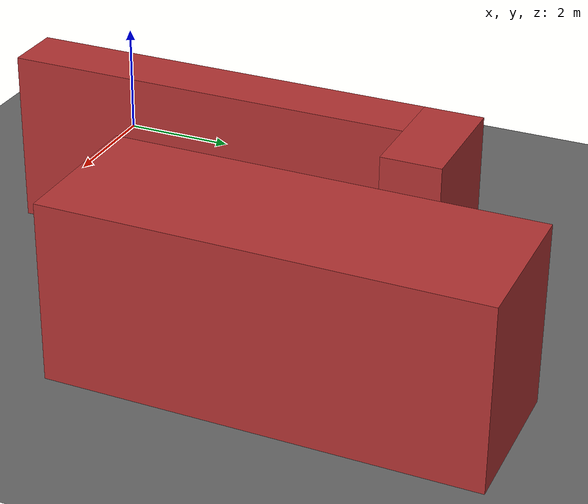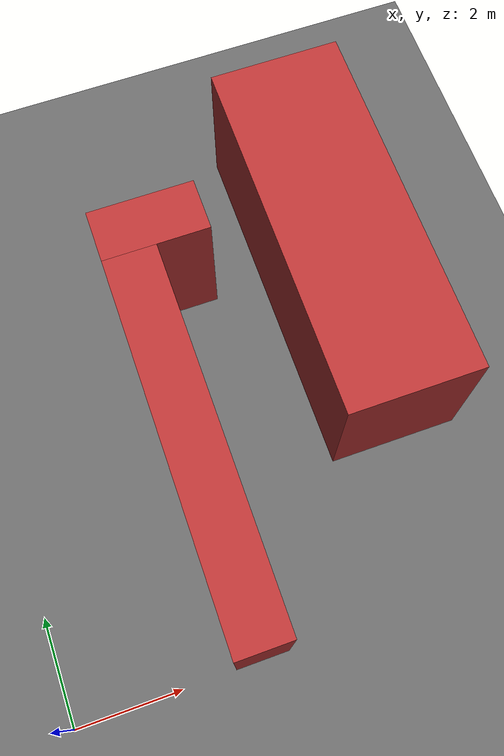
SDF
<?xml version="1.0" ?>
<sdf version="1.9">
  <world name="hybrid_planner_world">

    <physics name="default_physics" type="ode">
      <max_step_size>0.004</max_step_size>
      <real_time_factor>1.0</real_time_factor>
    </physics>

    <plugin filename="gz-sim-physics-system" name="gz::sim::systems::Physics"/>
    <plugin filename="gz-sim-scene-broadcaster-system" name="gz::sim::systems::SceneBroadcaster"/>
    <plugin filename="gz-sim-sensors-system" name="gz::sim::systems::Sensors"/>
    <plugin filename="gz-sim-user-commands-system" name="gz::sim::systems::UserCommands"/>

    <light type="directional" name="sun">
      <cast_shadows>true</cast_shadows>
      <pose>0 0 10 0 0 0</pose>
      <diffuse>0.8 0.8 0.8 1</diffuse>
      <specular>0.2 0.2 0.2 1</specular>
      <direction>-0.5 0.1 -0.9</direction>
    </light>

    <model name="ground_plane">
      <static>true</static>
      <link name="link">
        <collision name="collision">
          <geometry><plane><normal>0 0 1</normal><size>100 100</size></plane></geometry>
        </collision>
        <visual name="visual">
          <geometry><plane><normal>0 0 1</normal><size>100 100</size></plane></geometry>
          <material>
            <ambient>0.3 0.3 0.3 1</ambient>
            <diffuse>0.4 0.4 0.4 1</diffuse>
          </material>
        </visual>
      </link>
    </model>

    <!-- Obstacle 1: matches Python obstacle_list (3.0, 0.0, 1.0, 7.0) -->
    <!-- Box spans x:[3.0,4.0] y:[0.0,7.0] -> center (3.5, 3.5), size (1.0, 7.0) -->
    <model name="obstacle_1">
      <static>true</static>
      <pose>3.5 3.5 1.5 0 0 0</pose>
      <link name="link">
        <collision name="collision">
          <geometry><box><size>1.0 7.0 3.0</size></box></geometry>
        </collision>
        <visual name="visual">
          <geometry><box><size>1.0 7.0 3.0</size></box></geometry>
          <material>
            <ambient>0.6 0.1 0.1 1</ambient>
            <diffuse>0.7 0.2 0.2 1</diffuse>
          </material>
        </visual>
      </link>
    </model>

    <!-- Obstacle 2: matches (6.0, 3.0, 2.5, 7.0) -->
    <!-- Box spans x:[6.0,8.5] y:[3.0,10.0] -> center (7.25, 6.5), size (2.5, 7.0) -->
    <model name="obstacle_2">
      <static>true</static>
      <pose>7.25 6.5 1.5 0 0 0</pose>
      <link name="link">
        <collision name="collision">
          <geometry><box><size>2.5 7.0 3.0</size></box></geometry>
        </collision>
        <visual name="visual">
          <geometry><box><size>2.5 7.0 3.0</size></box></geometry>
          <material>
            <ambient>0.6 0.1 0.1 1</ambient>
            <diffuse>0.7 0.2 0.2 1</diffuse>
          </material>
        </visual>
      </link>
    </model>

    <!-- Obstacle 3: matches (3.0, 7.0, 2.0, 1.0) -->
    <!-- Box spans x:[3.0,5.0] y:[7.0,8.0] -> center (4.0, 7.5), size (2.0, 1.0) -->
    <model name="obstacle_3">
      <static>true</static>
      <pose>4.0 7.5 1.5 0 0 0</pose>
      <link name="link">
        <collision name="collision">
          <geometry><box><size>2.0 1.0 3.0</size></box></geometry>
        </collision>
        <visual name="visual">
          <geometry><box><size>2.0 1.0 3.0</size></box></geometry>
          <material>
            <ambient>0.6 0.1 0.1 1</ambient>
            <diffuse>0.7 0.2 0.2 1</diffuse>
          </material>
        </visual>
      </link>
    </model>

  </world>
</sdf>
